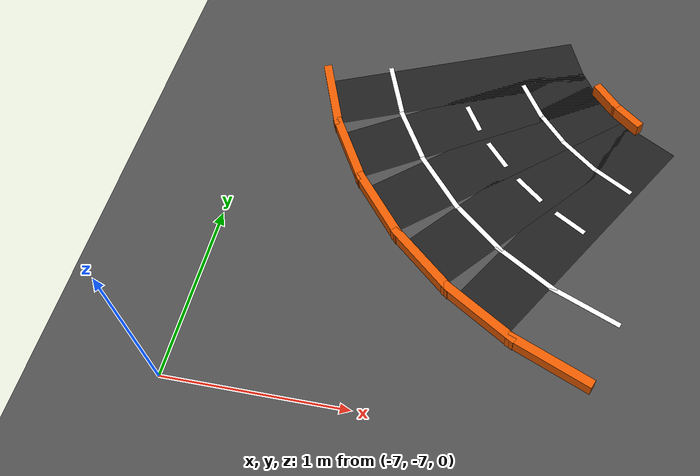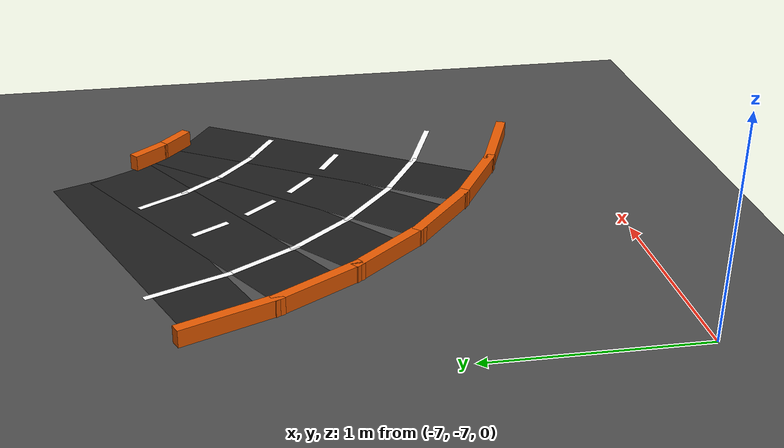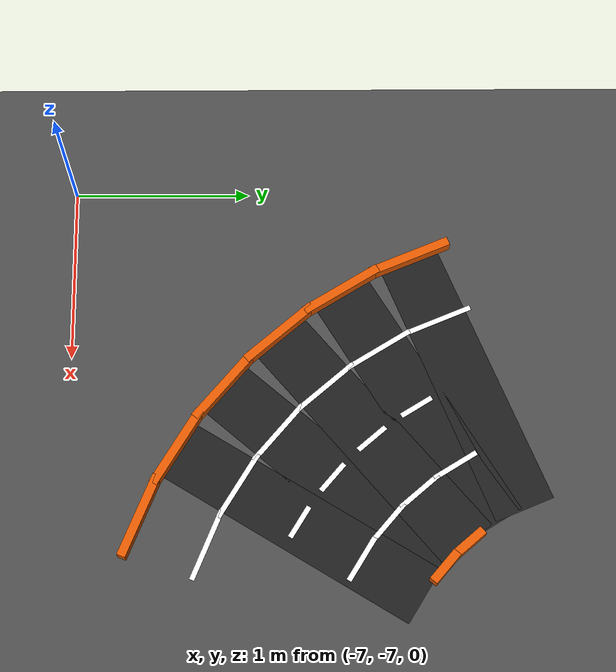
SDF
<sdf version="1.6">
 <world name="lab_track">
  <model name="ground_plane">
   <static>true</static>
   <link name="link">
    <collision name="collision">
     <geometry><plane><normal>0 0 1</normal><size>200 200</size></plane></geometry>
    </collision>
    <visual name="visual">
     <geometry><plane><normal>0 0 1</normal><size>200 200</size></plane></geometry>
     <material><ambient>0.3 0.3 0.3 1</ambient><diffuse>0.3 0.3 0.3 1</diffuse></material>
    </visual>
   </link>
  </model>
  <model name="m284">
   <static>true</static>
   <pose>-5.8478 -4.7654 0.00100 0 0 5.10509</pose>
   <link name="l">
    <visual name="v">
     <geometry><box><size>0.3519 1.6000 0.0010</size></box></geometry>
     <material><ambient>0.12 0.12 0.12 1</ambient><diffuse>0.12 0.12 0.12 1</diffuse></material>
    </visual>
   </link>
  </model>
  <model name="m286">
   <static>true</static>
   <pose>-6.5869 -5.0715 0.04000 0 0 5.10509</pose>
   <link name="l">
    <visual name="v">
     <geometry><box><size>0.4926 0.0500 0.0800</size></box></geometry>
     <material><ambient>0.9 0.35 0.0 1</ambient><diffuse>0.9 0.35 0.0 1</diffuse></material>
    </visual>
   </link>
  </model>
  <model name="m288">
   <static>true</static>
   <pose>-6.2173 -4.9184 0.00200 0 0 5.10509</pose>
   <link name="l">
    <visual name="v">
     <geometry><box><size>0.4222 0.0300 0.0010</size></box></geometry>
     <material><ambient>1 1 1 1</ambient><diffuse>1 1 1 1</diffuse></material>
    </visual>
   </link>
  </model>
  <model name="m290">
   <static>true</static>
   <pose>-5.7053 -5.0450 0.00100 0 0 5.26217</pose>
   <link name="l">
    <visual name="v">
     <geometry><box><size>0.3519 1.6000 0.0010</size></box></geometry>
     <material><ambient>0.12 0.12 0.12 1</ambient><diffuse>0.12 0.12 0.12 1</diffuse></material>
    </visual>
   </link>
  </model>
  <model name="m292">
   <static>true</static>
   <pose>-6.3874 -5.4630 0.04000 0 0 5.26217</pose>
   <link name="l">
    <visual name="v">
     <geometry><box><size>0.4926 0.0500 0.0800</size></box></geometry>
     <material><ambient>0.9 0.35 0.0 1</ambient><diffuse>0.9 0.35 0.0 1</diffuse></material>
    </visual>
   </link>
  </model>
  <model name="m293">
   <static>true</static>
   <pose>-5.3642 -4.8360 0.00200 0 0 5.26217</pose>
   <link name="l">
    <visual name="v">
     <geometry><box><size>0.2815 0.0300 0.0010</size></box></geometry>
     <material><ambient>1 1 1 1</ambient><diffuse>1 1 1 1</diffuse></material>
    </visual>
   </link>
  </model>
  <model name="m294">
   <static>true</static>
   <pose>-6.0463 -5.2540 0.00200 0 0 5.26217</pose>
   <link name="l">
    <visual name="v">
     <geometry><box><size>0.4222 0.0300 0.0010</size></box></geometry>
     <material><ambient>1 1 1 1</ambient><diffuse>1 1 1 1</diffuse></material>
    </visual>
   </link>
  </model>
  <model name="m295">
   <static>true</static>
   <pose>-5.7053 -5.0450 0.00200 0 0 5.26217</pose>
   <link name="l">
    <visual name="v">
     <geometry><box><size>0.2042 0.0300 0.0010</size></box></geometry>
     <material><ambient>1 1 1 1</ambient><diffuse>1 1 1 1</diffuse></material>
    </visual>
   </link>
  </model>
  <model name="m296">
   <static>true</static>
   <pose>-5.5208 -5.2989 0.00100 0 0 5.41925</pose>
   <link name="l">
    <visual name="v">
     <geometry><box><size>0.3519 1.6000 0.0010</size></box></geometry>
     <material><ambient>0.12 0.12 0.12 1</ambient><diffuse>0.12 0.12 0.12 1</diffuse></material>
    </visual>
   </link>
  </model>
  <model name="m297">
   <static>true</static>
   <pose>-4.9125 -4.7793 0.04000 0 0 5.41925</pose>
   <link name="l">
    <visual name="v">
     <geometry><box><size>0.2111 0.0500 0.0800</size></box></geometry>
     <material><ambient>0.9 0.35 0.0 1</ambient><diffuse>0.9 0.35 0.0 1</diffuse></material>
    </visual>
   </link>
  </model>
  <model name="m298">
   <static>true</static>
   <pose>-6.1291 -5.8185 0.04000 0 0 5.41925</pose>
   <link name="l">
    <visual name="v">
     <geometry><box><size>0.4926 0.0500 0.0800</size></box></geometry>
     <material><ambient>0.9 0.35 0.0 1</ambient><diffuse>0.9 0.35 0.0 1</diffuse></material>
    </visual>
   </link>
  </model>
  <model name="m299">
   <static>true</static>
   <pose>-5.2166 -5.0391 0.00200 0 0 5.41925</pose>
   <link name="l">
    <visual name="v">
     <geometry><box><size>0.2815 0.0300 0.0010</size></box></geometry>
     <material><ambient>1 1 1 1</ambient><diffuse>1 1 1 1</diffuse></material>
    </visual>
   </link>
  </model>
  <model name="m300">
   <static>true</static>
   <pose>-5.8250 -5.5587 0.00200 0 0 5.41925</pose>
   <link name="l">
    <visual name="v">
     <geometry><box><size>0.4222 0.0300 0.0010</size></box></geometry>
     <material><ambient>1 1 1 1</ambient><diffuse>1 1 1 1</diffuse></material>
    </visual>
   </link>
  </model>
  <model name="m301">
   <static>true</static>
   <pose>-5.5208 -5.2989 0.00200 0 0 5.41925</pose>
   <link name="l">
    <visual name="v">
     <geometry><box><size>0.2042 0.0300 0.0010</size></box></geometry>
     <material><ambient>1 1 1 1</ambient><diffuse>1 1 1 1</diffuse></material>
    </visual>
   </link>
  </model>
  <model name="m302">
   <static>true</static>
   <pose>-5.2989 -5.5208 0.00100 0 0 5.57633</pose>
   <link name="l">
    <visual name="v">
     <geometry><box><size>0.3519 1.6000 0.0010</size></box></geometry>
     <material><ambient>0.12 0.12 0.12 1</ambient><diffuse>0.12 0.12 0.12 1</diffuse></material>
    </visual>
   </link>
  </model>
  <model name="m303">
   <static>true</static>
   <pose>-4.7793 -4.9125 0.04000 0 0 5.57633</pose>
   <link name="l">
    <visual name="v">
     <geometry><box><size>0.2111 0.0500 0.0800</size></box></geometry>
     <material><ambient>0.9 0.35 0.0 1</ambient><diffuse>0.9 0.35 0.0 1</diffuse></material>
    </visual>
   </link>
  </model>
  <model name="m304">
   <static>true</static>
   <pose>-5.8185 -6.1291 0.04000 0 0 5.57633</pose>
   <link name="l">
    <visual name="v">
     <geometry><box><size>0.4926 0.0500 0.0800</size></box></geometry>
     <material><ambient>0.9 0.35 0.0 1</ambient><diffuse>0.9 0.35 0.0 1</diffuse></material>
    </visual>
   </link>
  </model>
  <model name="m305">
   <static>true</static>
   <pose>-5.0391 -5.2166 0.00200 0 0 5.57633</pose>
   <link name="l">
    <visual name="v">
     <geometry><box><size>0.2815 0.0300 0.0010</size></box></geometry>
     <material><ambient>1 1 1 1</ambient><diffuse>1 1 1 1</diffuse></material>
    </visual>
   </link>
  </model>
  <model name="m306">
   <static>true</static>
   <pose>-5.5587 -5.8250 0.00200 0 0 5.57633</pose>
   <link name="l">
    <visual name="v">
     <geometry><box><size>0.4222 0.0300 0.0010</size></box></geometry>
     <material><ambient>1 1 1 1</ambient><diffuse>1 1 1 1</diffuse></material>
    </visual>
   </link>
  </model>
  <model name="m307">
   <static>true</static>
   <pose>-5.2989 -5.5208 0.00200 0 0 5.57633</pose>
   <link name="l">
    <visual name="v">
     <geometry><box><size>0.2042 0.0300 0.0010</size></box></geometry>
     <material><ambient>1 1 1 1</ambient><diffuse>1 1 1 1</diffuse></material>
    </visual>
   </link>
  </model>
  <model name="m308">
   <static>true</static>
   <pose>-5.0450 -5.7053 0.00100 0 0 5.73341</pose>
   <link name="l">
    <visual name="v">
     <geometry><box><size>0.3519 1.6000 0.0010</size></box></geometry>
     <material><ambient>0.12 0.12 0.12 1</ambient><diffuse>0.12 0.12 0.12 1</diffuse></material>
    </visual>
   </link>
  </model>
  <model name="m310">
   <static>true</static>
   <pose>-5.4630 -6.3874 0.04000 0 0 5.73341</pose>
   <link name="l">
    <visual name="v">
     <geometry><box><size>0.4926 0.0500 0.0800</size></box></geometry>
     <material><ambient>0.9 0.35 0.0 1</ambient><diffuse>0.9 0.35 0.0 1</diffuse></material>
    </visual>
   </link>
  </model>
  <model name="m311">
   <static>true</static>
   <pose>-4.8360 -5.3642 0.00200 0 0 5.73341</pose>
   <link name="l">
    <visual name="v">
     <geometry><box><size>0.2815 0.0300 0.0010</size></box></geometry>
     <material><ambient>1 1 1 1</ambient><diffuse>1 1 1 1</diffuse></material>
    </visual>
   </link>
  </model>
  <model name="m312">
   <static>true</static>
   <pose>-5.2540 -6.0463 0.00200 0 0 5.73341</pose>
   <link name="l">
    <visual name="v">
     <geometry><box><size>0.4222 0.0300 0.0010</size></box></geometry>
     <material><ambient>1 1 1 1</ambient><diffuse>1 1 1 1</diffuse></material>
    </visual>
   </link>
  </model>
  <model name="m313">
   <static>true</static>
   <pose>-5.0450 -5.7053 0.00200 0 0 5.73341</pose>
   <link name="l">
    <visual name="v">
     <geometry><box><size>0.2042 0.0300 0.0010</size></box></geometry>
     <material><ambient>1 1 1 1</ambient><diffuse>1 1 1 1</diffuse></material>
    </visual>
   </link>
  </model>
  <model name="m316">
   <static>true</static>
   <pose>-5.0715 -6.5869 0.04000 0 0 5.89049</pose>
   <link name="l">
    <visual name="v">
     <geometry><box><size>0.4926 0.0500 0.0800</size></box></geometry>
     <material><ambient>0.9 0.35 0.0 1</ambient><diffuse>0.9 0.35 0.0 1</diffuse></material>
    </visual>
   </link>
  </model>
  <model name="m318">
   <static>true</static>
   <pose>-4.9184 -6.2173 0.00200 0 0 5.89049</pose>
   <link name="l">
    <visual name="v">
     <geometry><box><size>0.4222 0.0300 0.0010</size></box></geometry>
     <material><ambient>1 1 1 1</ambient><diffuse>1 1 1 1</diffuse></material>
    </visual>
   </link>
  </model>
 </world>
</sdf>
